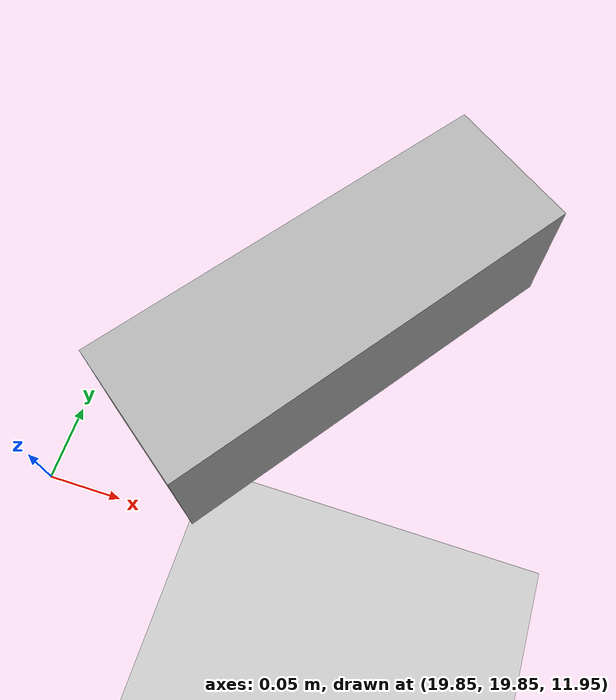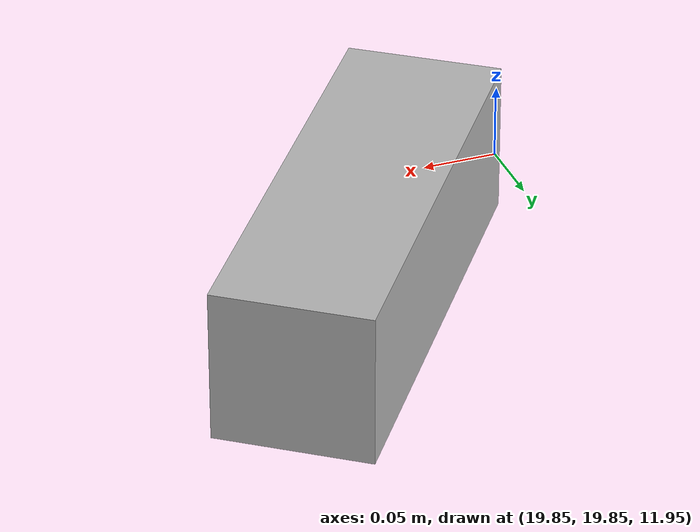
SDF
<sdf version="1.7">
 <world name="visnet">
  <scene>
   <ambient>0.4 0.4 0.4 1</ambient>
   <background>0.7 0.7 0.7 1</background>
   <shadows>1</shadows>
   <sky><clouds><speed>12</speed></clouds></sky>
   <fog><type>linear</type><start>10</start><end>500</end><density>1</density></fog>
  </scene>
  <light type="directional" name="sun">
   <pose>0 0 10 0 0 0</pose>
   <diffuse>0.8 0.8 0.8 1</diffuse>
   <specular>0.2 0.2 0.2 1</specular>
   <attenuation>
    <range>1000</range>
    <constant>0.9</constant>
    <linear>0.01</linear>
    <quadratic>0.001</quadratic>
   </attenuation>
   <direction>-0.5 0.1 -0.9</direction>
  </light>
  <model name="ground_plane">
   <static>true</static>
   <link name="link">
    <collision name="collision"><geometry><plane><normal>0 0 1</normal></plane></geometry></collision>
    <visual name="visual">
     <geometry><plane><normal>0 0 1</normal><size>100 100</size></plane></geometry>
     <material>
      <ambient>0.8 0.8 0.8 1</ambient>
      <diffuse>0.8 0.8 0.8 1</diffuse>
      <specular>0.8 0.8 0.8 1</specular>
     </material>
    </visual>
   </link>
  </model>
  <model name="camera_0">
   <static>true</static>
   <pose>20 20 12 0 0 -2.2</pose>
   <link name="camera_0">
    <visual name="visual"><geometry><box><size>0.3 0.1 0.1</size></box></geometry></visual>
    <sensor name="camera_0" type="camera">
     <camera>
      <horizontal_fov>2</horizontal_fov>
      <image><width>1600</width><height>1200</height></image>
      <clip><near>0.1</near><far>100</far></clip>
      <distortion><k1>0</k1><k2>0</k2><k3>0</k3><p1>0</p1><p2>0</p2></distortion>
      <always_on>1</always_on>
      <visualize>1</visualize>
      <lens><type>stereographic</type><scale_to_hfov>1</scale_to_hfov><cutoff_angle>2</cutoff_angle></lens>
     </camera>
     <update_rate>30.0</update_rate>
     <plugin name="camera_0_controller" filename="libgazebo_ros_camera.so">
      <hack_baseline>0.07</hack_baseline>
     </plugin>
    </sensor>
   </link>
  </model>
  <model name="camera_1">
   <static>true</static>
   <pose>20 20 12 0 0 -2.2</pose>
   <link name="camera_0">
    <visual name="visual"><geometry><box><size>0.3 0.1 0.1</size></box></geometry></visual>
    <sensor name="camera_1" type="camera">
     <camera>
      <horizontal_fov>2</horizontal_fov>
      <image><width>1600</width><height>1200</height></image>
      <clip><near>0.1</near><far>100</far></clip>
      <distortion><k1>0</k1><k2>0</k2><k3>0</k3><p1>0</p1><p2>0</p2></distortion>
      <always_on>1</always_on>
      <visualize>1</visualize>
      <lens><type>stereographic</type><scale_to_hfov>1</scale_to_hfov><cutoff_angle>2</cutoff_angle></lens>
     </camera>
     <update_rate>30.0</update_rate>
     <plugin name="camera_1_controller" filename="libgazebo_ros_camera.so">
      <hack_baseline>0.07</hack_baseline>
     </plugin>
    </sensor>
   </link>
  </model>
  <model name="camera_2">
   <static>true</static>
   <pose>20 20 12 0 0 -2.2</pose>
   <link name="camera_0">
    <visual name="visual"><geometry><box><size>0.3 0.1 0.1</size></box></geometry></visual>
    <sensor name="camera_2" type="camera">
     <camera>
      <horizontal_fov>2</horizontal_fov>
      <image><width>1600</width><height>1200</height></image>
      <clip><near>0.1</near><far>100</far></clip>
      <distortion><k1>0</k1><k2>0</k2><k3>0</k3><p1>0</p1><p2>0</p2></distortion>
      <always_on>1</always_on>
      <visualize>1</visualize>
      <lens><type>stereographic</type><scale_to_hfov>1</scale_to_hfov><cutoff_angle>2</cutoff_angle></lens>
     </camera>
     <update_rate>30.0</update_rate>
     <plugin name="camera_2_controller" filename="libgazebo_ros_camera.so">
      <hack_baseline>0.07</hack_baseline>
     </plugin>
    </sensor>
   </link>
  </model>
  <model name="camera_3">
   <static>true</static>
   <pose>20 20 12 0 0 -2.2</pose>
   <link name="camera_0">
    <visual name="visual"><geometry><box><size>0.3 0.1 0.1</size></box></geometry></visual>
    <sensor name="camera_3" type="camera">
     <camera>
      <horizontal_fov>2</horizontal_fov>
      <image><width>1600</width><height>1200</height></image>
      <clip><near>0.1</near><far>100</far></clip>
      <distortion><k1>0</k1><k2>0</k2><k3>0</k3><p1>0</p1><p2>0</p2></distortion>
      <always_on>1</always_on>
      <visualize>1</visualize>
      <lens><type>stereographic</type><scale_to_hfov>1</scale_to_hfov><cutoff_angle>2</cutoff_angle></lens>
     </camera>
     <update_rate>30.0</update_rate>
     <plugin name="camera_3_controller" filename="libgazebo_ros_camera.so">
      <hack_baseline>0.07</hack_baseline>
     </plugin>
    </sensor>
   </link>
  </model>
  <model name="bird">
   <pose>0 0 10 0 0 0</pose>
   <link name="bird_body">
    <visual name="bird_visual">
     <geometry><mesh><uri>../models/Eagle.dae</uri><scale>1 1 1</scale></mesh></geometry>
     <material>
      <ambient>1 0.1 0.1 1</ambient>
      <diffuse>1 0.1 0.2 1</diffuse>
      <specular>1 0 0 0</specular>
      <emissive>0.5 0 0 1</emissive>
     </material>
    </visual>
    <collision name="bird_collision"><geometry><box><size>1 1 1</size></box></geometry></collision>
   </link>
  </model>
 </world>
</sdf>
